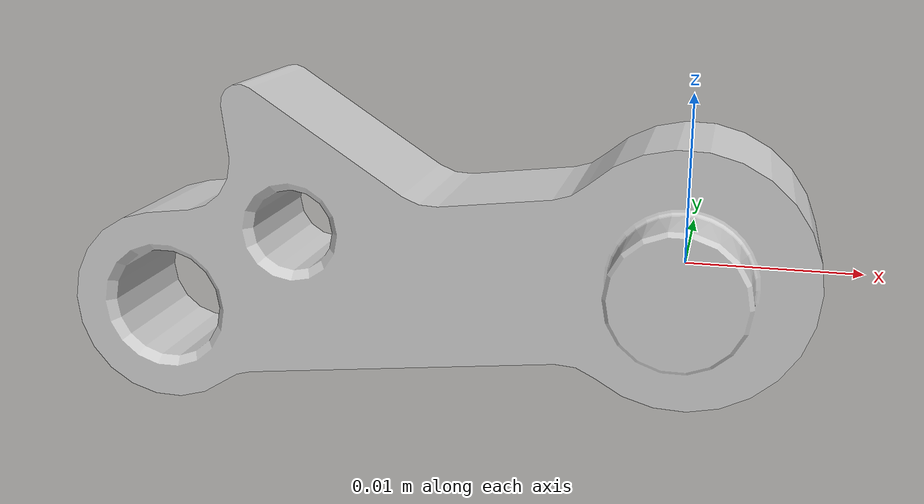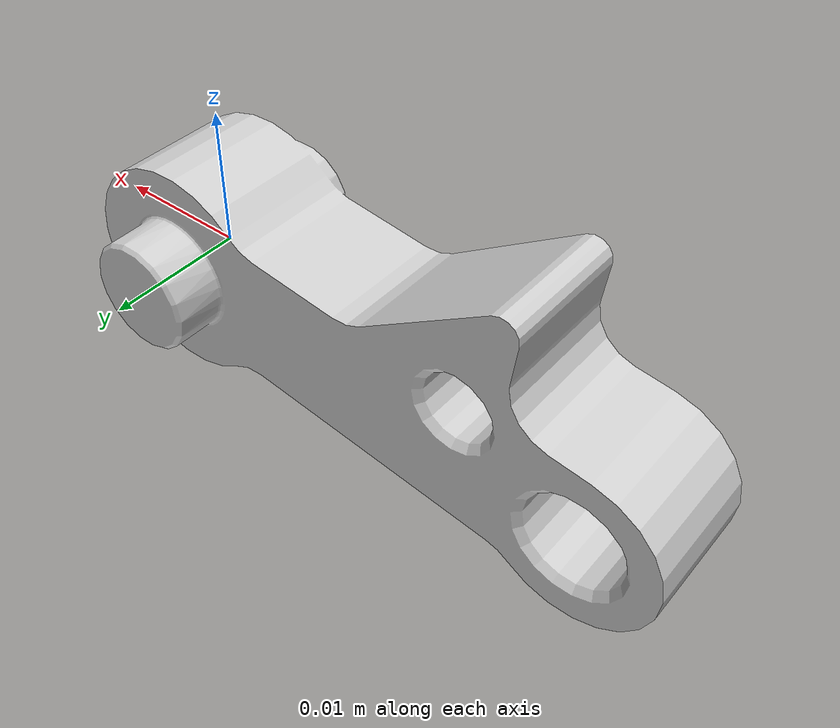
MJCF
<mujoco model="right_knuckle">
  <default>
    <default class="visual">
      <geom group="2" type="mesh" contype="0" conaffinity="0"/>
    </default>
    <default class="collision">
      <geom group="3" type="mesh"/>
    </default>
  </default>
  <asset>
    <material name="material_right_knuckle_0" specular="0.20000000000000004" shininess="1.0" rgba="0.80000000 0.80000000 0.80000000 1.0"/>
    <mesh file="right_knuckle.obj"/>
  </asset>
  <worldbody>
    <body name="right_knuckle">
      <geom material="material_right_knuckle_0" mesh="right_knuckle" class="visual"/>
      <geom mesh="right_knuckle" class="collision"/>
    </body>
  </worldbody>
</mujoco>
